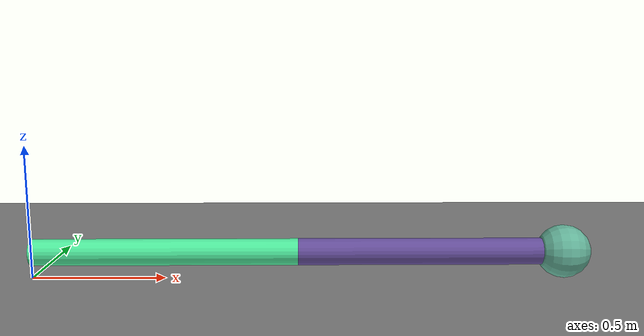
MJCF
<mujoco>
    <option gravity="0 0 0" />
    <worldbody>
        <light diffuse=".5 .5 .5" pos="0 0 3" dir="0 0 -1" />
        <geom type="plane" size="4 4 0.1" rgba=".5 .5 .5 1" />
        <body pos="0.5 0 0.1" euler="0 90 0">
            <joint type="hinge" axis="-1 0 0" pos="0 0 -0.5" />
            <geom type="cylinder" size=".05 .5" rgba="0.3 0.9 0.6 1"/>

            <body pos="0 0 1" euler="0 0 0">
              <joint type="hinge" axis="-1 0 0" pos="0 0 -0.5" />
              <geom type="cylinder" size=".05 .5" rgba="0.39 0.3 0.6 1"/>
              <body pos="0 0 0.5" euler="0 0 0">
                   <geom type="sphere" size=".1" rgba="0.39 0.7 0.6 1"/>
              </body>
            </body>

        </body>

    </worldbody>
</mujoco>
